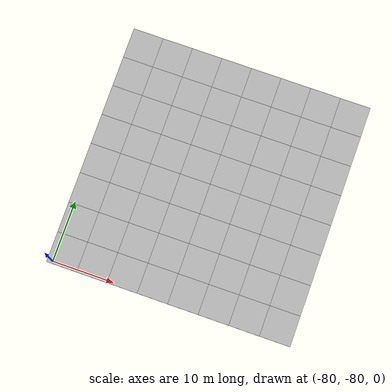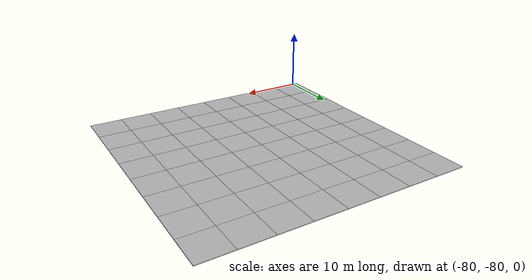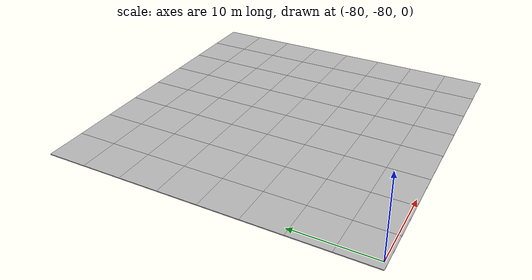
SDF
<sdf version="1.7">
 <world name="default">
  <model name="mud_plane_80x80_2">
   <model name="mud_plane_40x40_2">
    <model name="mud_plane_20x20">
     <model name="mud_plane">
      <static>1</static>
      <link name="link">
       <collision name="collision"><geometry><box><size>10 10 0.1</size></box></geometry></collision>
       <visual name="visual_1">
        <pose>-2.5 2.5 -0.05 0 -0 0</pose>
        <cast_shadows>0</cast_shadows>
        <geometry><box><size>5 5 0.1</size></box></geometry>
        <material>
         <script>
          <uri>model://mud_plane/materials/scripts</uri>
          <uri>model://mud_plane/materials/textures</uri>
          <name>vrc/mud</name>
         </script>
        </material>
       </visual>
       <visual name="visual_2">
        <pose>2.5 2.5 -0.05 0 -0 0</pose>
        <cast_shadows>0</cast_shadows>
        <geometry><box><size>5 5 0.1</size></box></geometry>
        <material>
         <script>
          <uri>model://mud_plane/materials/scripts</uri>
          <uri>model://mud_plane/materials/textures</uri>
          <name>vrc/mud</name>
         </script>
        </material>
       </visual>
       <visual name="visual_3">
        <pose>2.5 -2.5 -0.05 0 -0 0</pose>
        <cast_shadows>0</cast_shadows>
        <geometry><box><size>5 5 0.1</size></box></geometry>
        <material>
         <script>
          <uri>model://mud_plane/materials/scripts</uri>
          <uri>model://mud_plane/materials/textures</uri>
          <name>vrc/mud</name>
         </script>
        </material>
       </visual>
       <visual name="visual_4">
        <pose>-2.5 -2.5 -0.05 0 -0 0</pose>
        <cast_shadows>0</cast_shadows>
        <geometry><box><size>5 5 0.1</size></box></geometry>
        <material>
         <script>
          <uri>model://mud_plane/materials/scripts</uri>
          <uri>model://mud_plane/materials/textures</uri>
          <name>vrc/mud</name>
         </script>
        </material>
       </visual>
      </link>
      <pose>-4.99986 -4.99991 0 0 -0 0</pose>
     </model>
     <model name="mud_plane_0">
      <static>1</static>
      <link name="link">
       <collision name="collision"><geometry><box><size>10 10 0.1</size></box></geometry></collision>
       <visual name="visual_1">
        <pose>-2.5 2.5 -0.05 0 -0 0</pose>
        <cast_shadows>0</cast_shadows>
        <geometry><box><size>5 5 0.1</size></box></geometry>
        <material>
         <script>
          <uri>model://mud_plane/materials/scripts</uri>
          <uri>model://mud_plane/materials/textures</uri>
          <name>vrc/mud</name>
         </script>
        </material>
       </visual>
       <visual name="visual_2">
        <pose>2.5 2.5 -0.05 0 -0 0</pose>
        <cast_shadows>0</cast_shadows>
        <geometry><box><size>5 5 0.1</size></box></geometry>
        <material>
         <script>
          <uri>model://mud_plane/materials/scripts</uri>
          <uri>model://mud_plane/materials/textures</uri>
          <name>vrc/mud</name>
         </script>
        </material>
       </visual>
       <visual name="visual_3">
        <pose>2.5 -2.5 -0.05 0 -0 0</pose>
        <cast_shadows>0</cast_shadows>
        <geometry><box><size>5 5 0.1</size></box></geometry>
        <material>
         <script>
          <uri>model://mud_plane/materials/scripts</uri>
          <uri>model://mud_plane/materials/textures</uri>
          <name>vrc/mud</name>
         </script>
        </material>
       </visual>
       <visual name="visual_4">
        <pose>-2.5 -2.5 -0.05 0 -0 0</pose>
        <cast_shadows>0</cast_shadows>
        <geometry><box><size>5 5 0.1</size></box></geometry>
        <material>
         <script>
          <uri>model://mud_plane/materials/scripts</uri>
          <uri>model://mud_plane/materials/textures</uri>
          <name>vrc/mud</name>
         </script>
        </material>
       </visual>
      </link>
      <pose>-4.99946 4.99954 0 0 -0 0</pose>
     </model>
     <model name="mud_plane_1">
      <static>1</static>
      <link name="link">
       <collision name="collision"><geometry><box><size>10 10 0.1</size></box></geometry></collision>
       <visual name="visual_1">
        <pose>-2.5 2.5 -0.05 0 -0 0</pose>
        <cast_shadows>0</cast_shadows>
        <geometry><box><size>5 5 0.1</size></box></geometry>
        <material>
         <script>
          <uri>model://mud_plane/materials/scripts</uri>
          <uri>model://mud_plane/materials/textures</uri>
          <name>vrc/mud</name>
         </script>
        </material>
       </visual>
       <visual name="visual_2">
        <pose>2.5 2.5 -0.05 0 -0 0</pose>
        <cast_shadows>0</cast_shadows>
        <geometry><box><size>5 5 0.1</size></box></geometry>
        <material>
         <script>
          <uri>model://mud_plane/materials/scripts</uri>
          <uri>model://mud_plane/materials/textures</uri>
          <name>vrc/mud</name>
         </script>
        </material>
       </visual>
       <visual name="visual_3">
        <pose>2.5 -2.5 -0.05 0 -0 0</pose>
        <cast_shadows>0</cast_shadows>
        <geometry><box><size>5 5 0.1</size></box></geometry>
        <material>
         <script>
          <uri>model://mud_plane/materials/scripts</uri>
          <uri>model://mud_plane/materials/textures</uri>
          <name>vrc/mud</name>
         </script>
        </material>
       </visual>
       <visual name="visual_4">
        <pose>-2.5 -2.5 -0.05 0 -0 0</pose>
        <cast_shadows>0</cast_shadows>
        <geometry><box><size>5 5 0.1</size></box></geometry>
        <material>
         <script>
          <uri>model://mud_plane/materials/scripts</uri>
          <uri>model://mud_plane/materials/textures</uri>
          <name>vrc/mud</name>
         </script>
        </material>
       </visual>
      </link>
      <pose>4.99964 -4.99949 0 0 -0 0</pose>
     </model>
     <model name="mud_plane_2">
      <static>1</static>
      <link name="link">
       <collision name="collision"><geometry><box><size>10 10 0.1</size></box></geometry></collision>
       <visual name="visual_1">
        <pose>-2.5 2.5 -0.05 0 -0 0</pose>
        <cast_shadows>0</cast_shadows>
        <geometry><box><size>5 5 0.1</size></box></geometry>
        <material>
         <script>
          <uri>model://mud_plane/materials/scripts</uri>
          <uri>model://mud_plane/materials/textures</uri>
          <name>vrc/mud</name>
         </script>
        </material>
       </visual>
       <visual name="visual_2">
        <pose>2.5 2.5 -0.05 0 -0 0</pose>
        <cast_shadows>0</cast_shadows>
        <geometry><box><size>5 5 0.1</size></box></geometry>
        <material>
         <script>
          <uri>model://mud_plane/materials/scripts</uri>
          <uri>model://mud_plane/materials/textures</uri>
          <name>vrc/mud</name>
         </script>
        </material>
       </visual>
       <visual name="visual_3">
        <pose>2.5 -2.5 -0.05 0 -0 0</pose>
        <cast_shadows>0</cast_shadows>
        <geometry><box><size>5 5 0.1</size></box></geometry>
        <material>
         <script>
          <uri>model://mud_plane/materials/scripts</uri>
          <uri>model://mud_plane/materials/textures</uri>
          <name>vrc/mud</name>
         </script>
        </material>
       </visual>
       <visual name="visual_4">
        <pose>-2.5 -2.5 -0.05 0 -0 0</pose>
        <cast_shadows>0</cast_shadows>
        <geometry><box><size>5 5 0.1</size></box></geometry>
        <material>
         <script>
          <uri>model://mud_plane/materials/scripts</uri>
          <uri>model://mud_plane/materials/textures</uri>
          <name>vrc/mud</name>
         </script>
        </material>
       </visual>
      </link>
      <pose>4.99967 4.99986 0 0 -0 0</pose>
     </model>
     <static>0</static>
     <pose>-9.99895 9.99843 0 0 -0 0</pose>
    </model>
    <model name="mud_plane_20x20_0">
     <model name="mud_plane">
      <static>1</static>
      <link name="link">
       <collision name="collision"><geometry><box><size>10 10 0.1</size></box></geometry></collision>
       <visual name="visual_1">
        <pose>-2.5 2.5 -0.05 0 -0 0</pose>
        <cast_shadows>0</cast_shadows>
        <geometry><box><size>5 5 0.1</size></box></geometry>
        <material>
         <script>
          <uri>model://mud_plane/materials/scripts</uri>
          <uri>model://mud_plane/materials/textures</uri>
          <name>vrc/mud</name>
         </script>
        </material>
       </visual>
       <visual name="visual_2">
        <pose>2.5 2.5 -0.05 0 -0 0</pose>
        <cast_shadows>0</cast_shadows>
        <geometry><box><size>5 5 0.1</size></box></geometry>
        <material>
         <script>
          <uri>model://mud_plane/materials/scripts</uri>
          <uri>model://mud_plane/materials/textures</uri>
          <name>vrc/mud</name>
         </script>
        </material>
       </visual>
       <visual name="visual_3">
        <pose>2.5 -2.5 -0.05 0 -0 0</pose>
        <cast_shadows>0</cast_shadows>
        <geometry><box><size>5 5 0.1</size></box></geometry>
        <material>
         <script>
          <uri>model://mud_plane/materials/scripts</uri>
          <uri>model://mud_plane/materials/textures</uri>
          <name>vrc/mud</name>
         </script>
        </material>
       </visual>
       <visual name="visual_4">
        <pose>-2.5 -2.5 -0.05 0 -0 0</pose>
        <cast_shadows>0</cast_shadows>
        <geometry><box><size>5 5 0.1</size></box></geometry>
        <material>
         <script>
          <uri>model://mud_plane/materials/scripts</uri>
          <uri>model://mud_plane/materials/textures</uri>
          <name>vrc/mud</name>
         </script>
        </material>
       </visual>
      </link>
      <pose>-4.99986 -4.99991 0 0 -0 0</pose>
     </model>
     <model name="mud_plane_0">
      <static>1</static>
      <link name="link">
       <collision name="collision"><geometry><box><size>10 10 0.1</size></box></geometry></collision>
       <visual name="visual_1">
        <pose>-2.5 2.5 -0.05 0 -0 0</pose>
        <cast_shadows>0</cast_shadows>
        <geometry><box><size>5 5 0.1</size></box></geometry>
        <material>
         <script>
          <uri>model://mud_plane/materials/scripts</uri>
          <uri>model://mud_plane/materials/textures</uri>
          <name>vrc/mud</name>
         </script>
        </material>
       </visual>
       <visual name="visual_2">
        <pose>2.5 2.5 -0.05 0 -0 0</pose>
        <cast_shadows>0</cast_shadows>
        <geometry><box><size>5 5 0.1</size></box></geometry>
        <material>
         <script>
          <uri>model://mud_plane/materials/scripts</uri>
          <uri>model://mud_plane/materials/textures</uri>
          <name>vrc/mud</name>
         </script>
        </material>
       </visual>
       <visual name="visual_3">
        <pose>2.5 -2.5 -0.05 0 -0 0</pose>
        <cast_shadows>0</cast_shadows>
        <geometry><box><size>5 5 0.1</size></box></geometry>
        <material>
         <script>
          <uri>model://mud_plane/materials/scripts</uri>
          <uri>model://mud_plane/materials/textures</uri>
          <name>vrc/mud</name>
         </script>
        </material>
       </visual>
       <visual name="visual_4">
        <pose>-2.5 -2.5 -0.05 0 -0 0</pose>
        <cast_shadows>0</cast_shadows>
        <geometry><box><size>5 5 0.1</size></box></geometry>
        <material>
         <script>
          <uri>model://mud_plane/materials/scripts</uri>
          <uri>model://mud_plane/materials/textures</uri>
          <name>vrc/mud</name>
         </script>
        </material>
       </visual>
      </link>
      <pose>-4.99946 4.99954 0 0 -0 0</pose>
     </model>
     <model name="mud_plane_1">
      <static>1</static>
      <link name="link">
       <collision name="collision"><geometry><box><size>10 10 0.1</size></box></geometry></collision>
       <visual name="visual_1">
        <pose>-2.5 2.5 -0.05 0 -0 0</pose>
        <cast_shadows>0</cast_shadows>
        <geometry><box><size>5 5 0.1</size></box></geometry>
        <material>
         <script>
          <uri>model://mud_plane/materials/scripts</uri>
          <uri>model://mud_plane/materials/textures</uri>
          <name>vrc/mud</name>
         </script>
        </material>
       </visual>
       <visual name="visual_2">
        <pose>2.5 2.5 -0.05 0 -0 0</pose>
        <cast_shadows>0</cast_shadows>
        <geometry><box><size>5 5 0.1</size></box></geometry>
        <material>
         <script>
          <uri>model://mud_plane/materials/scripts</uri>
          <uri>model://mud_plane/materials/textures</uri>
          <name>vrc/mud</name>
         </script>
        </material>
       </visual>
       <visual name="visual_3">
        <pose>2.5 -2.5 -0.05 0 -0 0</pose>
        <cast_shadows>0</cast_shadows>
        <geometry><box><size>5 5 0.1</size></box></geometry>
        <material>
         <script>
          <uri>model://mud_plane/materials/scripts</uri>
          <uri>model://mud_plane/materials/textures</uri>
          <name>vrc/mud</name>
         </script>
        </material>
       </visual>
       <visual name="visual_4">
        <pose>-2.5 -2.5 -0.05 0 -0 0</pose>
        <cast_shadows>0</cast_shadows>
        <geometry><box><size>5 5 0.1</size></box></geometry>
        <material>
         <script>
          <uri>model://mud_plane/materials/scripts</uri>
          <uri>model://mud_plane/materials/textures</uri>
          <name>vrc/mud</name>
         </script>
        </material>
       </visual>
      </link>
      <pose>4.99964 -4.99949 0 0 -0 0</pose>
     </model>
     <model name="mud_plane_2">
      <static>1</static>
      <link name="link">
       <collision name="collision"><geometry><box><size>10 10 0.1</size></box></geometry></collision>
       <visual name="visual_1">
        <pose>-2.5 2.5 -0.05 0 -0 0</pose>
        <cast_shadows>0</cast_shadows>
        <geometry><box><size>5 5 0.1</size></box></geometry>
        <material>
         <script>
          <uri>model://mud_plane/materials/scripts</uri>
          <uri>model://mud_plane/materials/textures</uri>
          <name>vrc/mud</name>
         </script>
        </material>
       </visual>
       <visual name="visual_2">
        <pose>2.5 2.5 -0.05 0 -0 0</pose>
        <cast_shadows>0</cast_shadows>
        <geometry><box><size>5 5 0.1</size></box></geometry>
        <material>
         <script>
          <uri>model://mud_plane/materials/scripts</uri>
          <uri>model://mud_plane/materials/textures</uri>
          <name>vrc/mud</name>
         </script>
        </material>
       </visual>
       <visual name="visual_3">
        <pose>2.5 -2.5 -0.05 0 -0 0</pose>
        <cast_shadows>0</cast_shadows>
        <geometry><box><size>5 5 0.1</size></box></geometry>
        <material>
         <script>
          <uri>model://mud_plane/materials/scripts</uri>
          <uri>model://mud_plane/materials/textures</uri>
          <name>vrc/mud</name>
         </script>
        </material>
       </visual>
       <visual name="visual_4">
        <pose>-2.5 -2.5 -0.05 0 -0 0</pose>
        <cast_shadows>0</cast_shadows>
        <geometry><box><size>5 5 0.1</size></box></geometry>
        <material>
         <script>
          <uri>model://mud_plane/materials/scripts</uri>
          <uri>model://mud_plane/materials/textures</uri>
          <name>vrc/mud</name>
         </script>
        </material>
       </visual>
      </link>
      <pose>4.99967 4.99986 0 0 -0 0</pose>
     </model>
     <static>0</static>
     <pose>9.99933 9.9997 0 0 -0 0</pose>
    </model>
    <model name="mud_plane_20x20_1">
     <model name="mud_plane">
      <static>1</static>
      <link name="link">
       <collision name="collision"><geometry><box><size>10 10 0.1</size></box></geometry></collision>
       <visual name="visual_1">
        <pose>-2.5 2.5 -0.05 0 -0 0</pose>
        <cast_shadows>0</cast_shadows>
        <geometry><box><size>5 5 0.1</size></box></geometry>
        <material>
         <script>
          <uri>model://mud_plane/materials/scripts</uri>
          <uri>model://mud_plane/materials/textures</uri>
          <name>vrc/mud</name>
         </script>
        </material>
       </visual>
       <visual name="visual_2">
        <pose>2.5 2.5 -0.05 0 -0 0</pose>
        <cast_shadows>0</cast_shadows>
        <geometry><box><size>5 5 0.1</size></box></geometry>
        <material>
         <script>
          <uri>model://mud_plane/materials/scripts</uri>
          <uri>model://mud_plane/materials/textures</uri>
          <name>vrc/mud</name>
         </script>
        </material>
       </visual>
       <visual name="visual_3">
        <pose>2.5 -2.5 -0.05 0 -0 0</pose>
        <cast_shadows>0</cast_shadows>
        <geometry><box><size>5 5 0.1</size></box></geometry>
        <material>
         <script>
          <uri>model://mud_plane/materials/scripts</uri>
          <uri>model://mud_plane/materials/textures</uri>
          <name>vrc/mud</name>
         </script>
        </material>
       </visual>
       <visual name="visual_4">
        <pose>-2.5 -2.5 -0.05 0 -0 0</pose>
        <cast_shadows>0</cast_shadows>
        <geometry><box><size>5 5 0.1</size></box></geometry>
        <material>
         <script>
          <uri>model://mud_plane/materials/scripts</uri>
          <uri>model://mud_plane/materials/textures</uri>
          <name>vrc/mud</name>
         </script>
        </material>
       </visual>
      </link>
      <pose>-4.99986 -4.99991 0 0 -0 0</pose>
     </model>
     <model name="mud_plane_0">
      <static>1</static>
      <link name="link">
       <collision name="collision"><geometry><box><size>10 10 0.1</size></box></geometry></collision>
       <visual name="visual_1">
        <pose>-2.5 2.5 -0.05 0 -0 0</pose>
        <cast_shadows>0</cast_shadows>
        <geometry><box><size>5 5 0.1</size></box></geometry>
        <material>
         <script>
          <uri>model://mud_plane/materials/scripts</uri>
          <uri>model://mud_plane/materials/textures</uri>
          <name>vrc/mud</name>
         </script>
        </material>
       </visual>
       <visual name="visual_2">
        <pose>2.5 2.5 -0.05 0 -0 0</pose>
        <cast_shadows>0</cast_shadows>
        <geometry><box><size>5 5 0.1</size></box></geometry>
        <material>
         <script>
          <uri>model://mud_plane/materials/scripts</uri>
          <uri>model://mud_plane/materials/textures</uri>
          <name>vrc/mud</name>
         </script>
        </material>
       </visual>
       <visual name="visual_3">
        <pose>2.5 -2.5 -0.05 0 -0 0</pose>
        <cast_shadows>0</cast_shadows>
        <geometry><box><size>5 5 0.1</size></box></geometry>
        <material>
         <script>
          <uri>model://mud_plane/materials/scripts</uri>
          <uri>model://mud_plane/materials/textures</uri>
          <name>vrc/mud</name>
         </script>
        </material>
       </visual>
       <visual name="visual_4">
        <pose>-2.5 -2.5 -0.05 0 -0 0</pose>
        <cast_shadows>0</cast_shadows>
        <geometry><box><size>5 5 0.1</size></box></geometry>
        <material>
         <script>
          <uri>model://mud_plane/materials/scripts</uri>
          <uri>model://mud_plane/materials/textures</uri>
          <name>vrc/mud</name>
         </script>
        </material>
       </visual>
      </link>
      <pose>-4.99946 4.99954 0 0 -0 0</pose>
     </model>
     <model name="mud_plane_1">
      <static>1</static>
      <link name="link">
       <collision name="collision"><geometry><box><size>10 10 0.1</size></box></geometry></collision>
       <visual name="visual_1">
        <pose>-2.5 2.5 -0.05 0 -0 0</pose>
        <cast_shadows>0</cast_shadows>
        <geometry><box><size>5 5 0.1</size></box></geometry>
        <material>
         <script>
          <uri>model://mud_plane/materials/scripts</uri>
          <uri>model://mud_plane/materials/textures</uri>
          <name>vrc/mud</name>
         </script>
        </material>
       </visual>
       <visual name="visual_2">
        <pose>2.5 2.5 -0.05 0 -0 0</pose>
        <cast_shadows>0</cast_shadows>
        <geometry><box><size>5 5 0.1</size></box></geometry>
        <material>
         <script>
          <uri>model://mud_plane/materials/scripts</uri>
          <uri>model://mud_plane/materials/textures</uri>
          <name>vrc/mud</name>
         </script>
        </material>
       </visual>
       <visual name="visual_3">
        <pose>2.5 -2.5 -0.05 0 -0 0</pose>
        <cast_shadows>0</cast_shadows>
        <geometry><box><size>5 5 0.1</size></box></geometry>
        <material>
         <script>
          <uri>model://mud_plane/materials/scripts</uri>
          <uri>model://mud_plane/materials/textures</uri>
          <name>vrc/mud</name>
         </script>
        </material>
       </visual>
       <visual name="visual_4">
        <pose>-2.5 -2.5 -0.05 0 -0 0</pose>
        <cast_shadows>0</cast_shadows>
        <geometry><box><size>5 5 0.1</size></box></geometry>
        <material>
         <script>
          <uri>model://mud_plane/materials/scripts</uri>
          <uri>model://mud_plane/materials/textures</uri>
          <name>vrc/mud</name>
         </script>
        </material>
       </visual>
      </link>
      <pose>4.99964 -4.99949 0 0 -0 0</pose>
     </model>
     <model name="mud_plane_2">
      <static>1</static>
      <link name="link">
       <collision name="collision"><geometry><box><size>10 10 0.1</size></box></geometry></collision>
       <visual name="visual_1">
        <pose>-2.5 2.5 -0.05 0 -0 0</pose>
        <cast_shadows>0</cast_shadows>
        <geometry><box><size>5 5 0.1</size></box></geometry>
        <material>
         <script>
          <uri>model://mud_plane/materials/scripts</uri>
          <uri>model://mud_plane/materials/textures</uri>
          <name>vrc/mud</name>
         </script>
        </material>
       </visual>
       <visual name="visual_2">
        <pose>2.5 2.5 -0.05 0 -0 0</pose>
        <cast_shadows>0</cast_shadows>
        <geometry><box><size>5 5 0.1</size></box></geometry>
        <material>
         <script>
          <uri>model://mud_plane/materials/scripts</uri>
          <uri>model://mud_plane/materials/textures</uri>
          <name>vrc/mud</name>
         </script>
        </material>
       </visual>
       <visual name="visual_3">
        <pose>2.5 -2.5 -0.05 0 -0 0</pose>
        <cast_shadows>0</cast_shadows>
        <geometry><box><size>5 5 0.1</size></box></geometry>
        <material>
         <script>
          <uri>model://mud_plane/materials/scripts</uri>
          <uri>model://mud_plane/materials/textures</uri>
          <name>vrc/mud</name>
         </script>
        </material>
       </visual>
       <visual name="visual_4">
        <pose>-2.5 -2.5 -0.05 0 -0 0</pose>
        <cast_shadows>0</cast_shadows>
        <geometry><box><size>5 5 0.1</size></box></geometry>
        <material>
         <script>
          <uri>model://mud_plane/materials/scripts</uri>
          <uri>model://mud_plane/materials/textures</uri>
          <name>vrc/mud</name>
         </script>
        </material>
       </visual>
      </link>
      <pose>4.99967 4.99986 0 0 -0 0</pose>
     </model>
     <static>0</static>
     <pose>9.9993 -9.99877 0 0 -0 0</pose>
    </model>
    <model name="mud_plane_20x20_2">
     <model name="mud_plane">
      <static>1</static>
      <link name="link">
       <collision name="collision"><geometry><box><size>10 10 0.1</size></box></geometry></collision>
       <visual name="visual_1">
        <pose>-2.5 2.5 -0.05 0 -0 0</pose>
        <cast_shadows>0</cast_shadows>
        <geometry><box><size>5 5 0.1</size></box></geometry>
        <material>
         <script>
          <uri>model://mud_plane/materials/scripts</uri>
          <uri>model://mud_plane/materials/textures</uri>
          <name>vrc/mud</name>
         </script>
        </material>
       </visual>
       <visual name="visual_2">
        <pose>2.5 2.5 -0.05 0 -0 0</pose>
        <cast_shadows>0</cast_shadows>
        <geometry><box><size>5 5 0.1</size></box></geometry>
        <material>
         <script>
          <uri>model://mud_plane/materials/scripts</uri>
          <uri>model://mud_plane/materials/textures</uri>
          <name>vrc/mud</name>
         </script>
        </material>
       </visual>
       <visual name="visual_3">
        <pose>2.5 -2.5 -0.05 0 -0 0</pose>
        <cast_shadows>0</cast_shadows>
        <geometry><box><size>5 5 0.1</size></box></geometry>
        <material>
         <script>
          <uri>model://mud_plane/materials/scripts</uri>
          <uri>model://mud_plane/materials/textures</uri>
          <name>vrc/mud</name>
         </script>
        </material>
       </visual>
       <visual name="visual_4">
        <pose>-2.5 -2.5 -0.05 0 -0 0</pose>
        <cast_shadows>0</cast_shadows>
        <geometry><box><size>5 5 0.1</size></box></geometry>
        <material>
         <script>
          <uri>model://mud_plane/materials/scripts</uri>
          <uri>model://mud_plane/materials/textures</uri>
          <name>vrc/mud</name>
         </script>
        </material>
       </visual>
      </link>
      <pose>-4.99986 -4.99991 0 0 -0 0</pose>
     </model>
     <model name="mud_plane_0">
      <static>1</static>
      <link name="link">
       <collision name="collision"><geometry><box><size>10 10 0.1</size></box></geometry></collision>
       <visual name="visual_1">
        <pose>-2.5 2.5 -0.05 0 -0 0</pose>
        <cast_shadows>0</cast_shadows>
        <geometry><box><size>5 5 0.1</size></box></geometry>
        <material>
         <script>
          <uri>model://mud_plane/materials/scripts</uri>
          <uri>model://mud_plane/materials/textures</uri>
          <name>vrc/mud</name>
         </script>
        </material>
       </visual>
       <visual name="visual_2">
        <pose>2.5 2.5 -0.05 0 -0 0</pose>
        <cast_shadows>0</cast_shadows>
        <geometry><box><size>5 5 0.1</size></box></geometry>
        <material>
         <script>
          <uri>model://mud_plane/materials/scripts</uri>
          <uri>model://mud_plane/materials/textures</uri>
          <name>vrc/mud</name>
         </script>
        </material>
       </visual>
       <visual name="visual_3">
        <pose>2.5 -2.5 -0.05 0 -0 0</pose>
        <cast_shadows>0</cast_shadows>
        <geometry><box><size>5 5 0.1</size></box></geometry>
        <material>
         <script>
          <uri>model://mud_plane/materials/scripts</uri>
          <uri>model://mud_plane/materials/textures</uri>
          <name>vrc/mud</name>
         </script>
        </material>
       </visual>
       <visual name="visual_4">
        <pose>-2.5 -2.5 -0.05 0 -0 0</pose>
        <cast_shadows>0</cast_shadows>
        <geometry><box><size>5 5 0.1</size></box></geometry>
        <material>
         <script>
          <uri>model://mud_plane/materials/scripts</uri>
          <uri>model://mud_plane/materials/textures</uri>
          <name>vrc/mud</name>
         </script>
        </material>
       </visual>
      </link>
      <pose>-4.99946 4.99954 0 0 -0 0</pose>
     </model>
     <model name="mud_plane_1">
      <static>1</static>
      <link name="link">
       <collision name="collision"><geometry><box><size>10 10 0.1</size></box></geometry></collision>
       <visual name="visual_1">
        <pose>-2.5 2.5 -0.05 0 -0 0</pose>
        <cast_shadows>0</cast_shadows>
        <geometry><box><size>5 5 0.1</size></box></geometry>
        <material>
         <script>
          <uri>model://mud_plane/materials/scripts</uri>
          <uri>model://mud_plane/materials/textures</uri>
          <name>vrc/mud</name>
         </script>
        </material>
       </visual>
       <visual name="visual_2">
        <pose>2.5 2.5 -0.05 0 -0 0</pose>
        <cast_shadows>0</cast_shadows>
        <geometry><box><size>5 5 0.1</size></box></geometry>
        <material>
         <script>
          <uri>model://mud_plane/materials/scripts</uri>
          <uri>model://mud_plane/materials/textures</uri>
          <name>vrc/mud</name>
         </script>
        </material>
       </visual>
       <visual name="visual_3">
        <pose>2.5 -2.5 -0.05 0 -0 0</pose>
        <cast_shadows>0</cast_shadows>
        <geometry><box><size>5 5 0.1</size></box></geometry>
        <material>
         <script>
          <uri>model://mud_plane/materials/scripts</uri>
          <uri>model://mud_plane/materials/textures</uri>
          <name>vrc/mud</name>
         </script>
        </material>
       </visual>
       <visual name="visual_4">
        <pose>-2.5 -2.5 -0.05 0 -0 0</pose>
        <cast_shadows>0</cast_shadows>
        <geometry><box><size>5 5 0.1</size></box></geometry>
        <material>
         <script>
          <uri>model://mud_plane/materials/scripts</uri>
          <uri>model://mud_plane/materials/textures</uri>
          <name>vrc/mud</name>
         </script>
        </material>
       </visual>
      </link>
      <pose>4.99964 -4.99949 0 0 -0 0</pose>
     </model>
     <model name="mud_plane_2">
      <static>1</static>
      <link name="link">
       <collision name="collision"><geometry><box><size>10 10 0.1</size></box></geometry></collision>
       <visual name="visual_1">
        <pose>-2.5 2.5 -0.05 0 -0 0</pose>
        <cast_shadows>0</cast_shadows>
        <geometry><box><size>5 5 0.1</size></box></geometry>
        <material>
         <script>
          <uri>model://mud_plane/materials/scripts</uri>
          <uri>model://mud_plane/materials/textures</uri>
          <name>vrc/mud</name>
         </script>
        </material>
       </visual>
       <visual name="visual_2">
        <pose>2.5 2.5 -0.05 0 -0 0</pose>
        <cast_shadows>0</cast_shadows>
        <geometry><box><size>5 5 0.1</size></box></geometry>
        <material>
         <script>
          <uri>model://mud_plane/materials/scripts</uri>
          <uri>model://mud_plane/materials/textures</uri>
          <name>vrc/mud</name>
         </script>
        </material>
       </visual>
       <visual name="visual_3">
        <pose>2.5 -2.5 -0.05 0 -0 0</pose>
        <cast_shadows>0</cast_shadows>
        <geometry><box><size>5 5 0.1</size></box></geometry>
        <material>
         <script>
          <uri>model://mud_plane/materials/scripts</uri>
          <uri>model://mud_plane/materials/textures</uri>
          <name>vrc/mud</name>
         </script>
        </material>
       </visual>
       <visual name="visual_4">
        <pose>-2.5 -2.5 -0.05 0 -0 0</pose>
        <cast_shadows>0</cast_shadows>
        <geometry><box><size>5 5 0.1</size></box></geometry>
        <material>
         <script>
          <uri>model://mud_plane/materials/scripts</uri>
          <uri>model://mud_plane/materials/textures</uri>
          <name>vrc/mud</name>
         </script>
        </material>
       </visual>
      </link>
      <pose>4.99967 4.99986 0 0 -0 0</pose>
     </model>
     <static>0</static>
     <pose>-9.99969 -9.99935 0 0 -0 0</pose>
    </model>
    <static>0</static>
    <pose>-19.9989 -19.9993 0 0 -0 0</pose>
   </model>
   <static>0</static>
   <pose>-40.9522 -40.3255 0 0 -0 0</pose>
  </model>
 </world>
</sdf>
